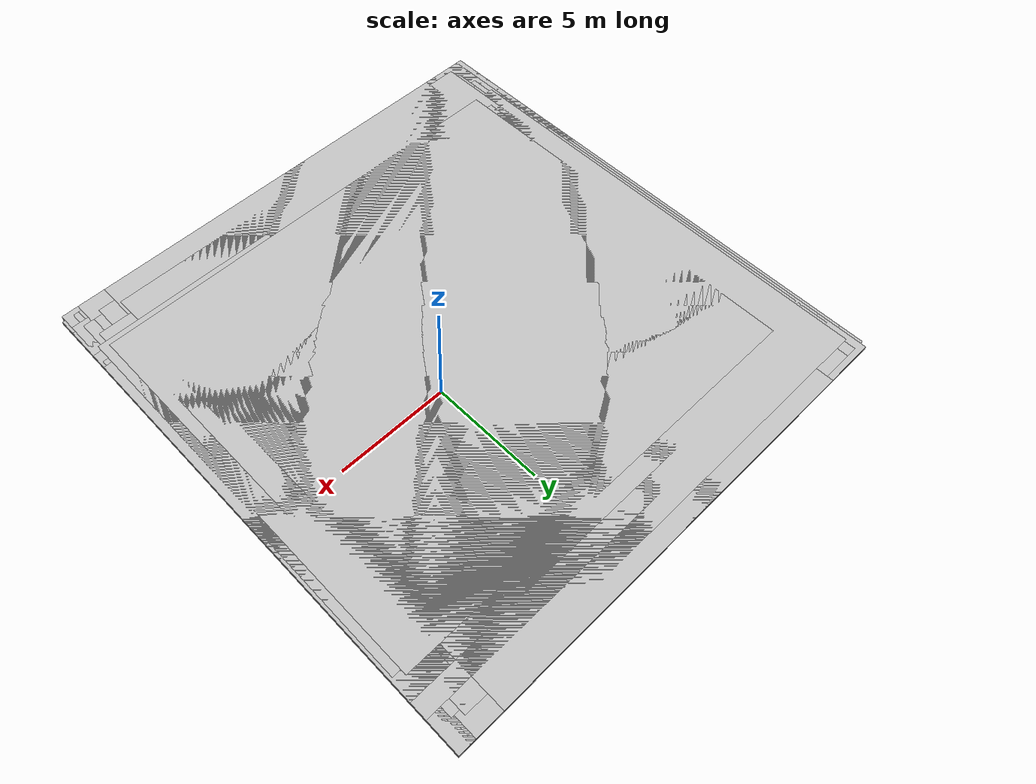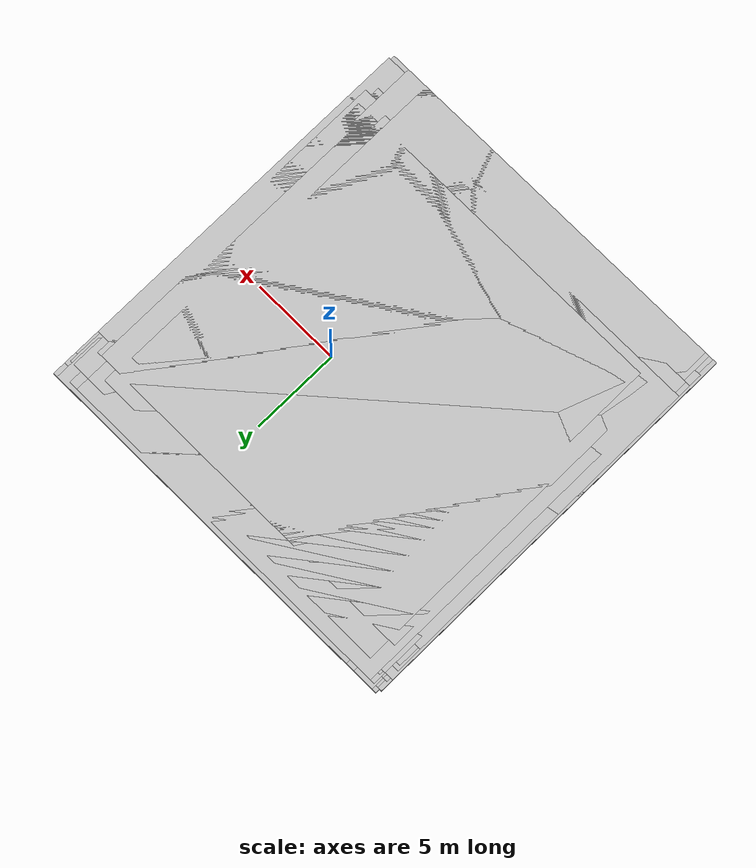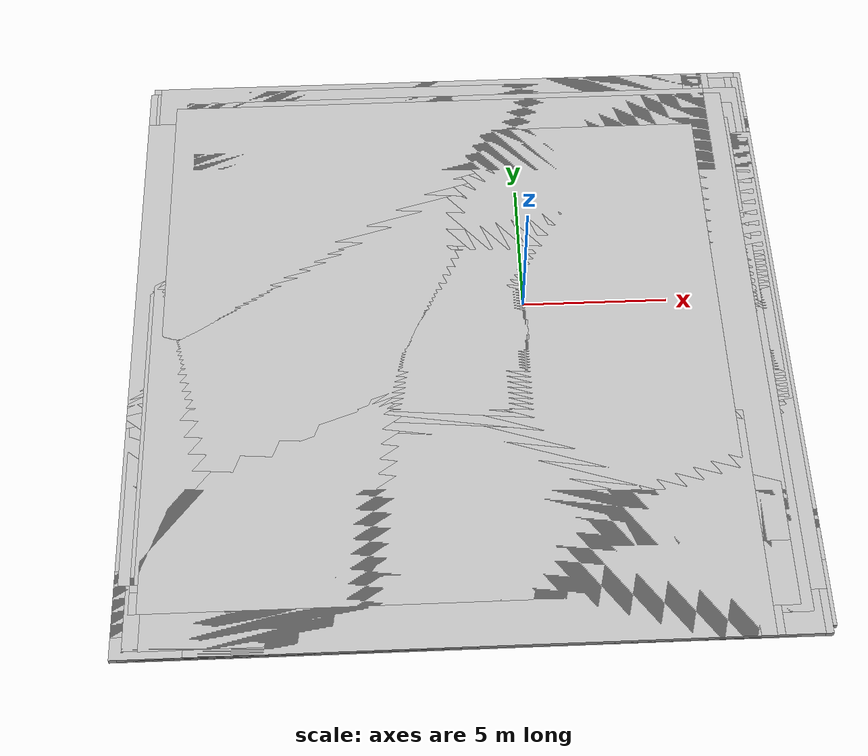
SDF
<sdf version="1.9">
 <world name="virtual_maize_field">
  <physics name="10ms" type="ignored">
   <max_step_size>0.03</max_step_size>
   <real_time_factor>1.0</real_time_factor>
  </physics>
  <plugin filename="gz-sim-physics-system" name="gz::sim::systems::Physics"/>
  <plugin filename="gz-sim-user-commands-system" name="gz::sim::systems::UserCommands"/>
  <plugin filename="gz-sim-scene-broadcaster-system" name="gz::sim::systems::SceneBroadcaster"/>
  <light type="directional" name="sun">
   <pose>0 0 10 0 0 0</pose>
   <diffuse>0.8 0.8 0.8 1</diffuse>
   <specular>0.2 0.2 0.2 1</specular>
   <attenuation>
    <range>1000</range>
    <constant>0.9</constant>
    <linear>0.01</linear>
    <quadratic>0.001</quadratic>
   </attenuation>
   <direction>-0.5 0.1 -0.9</direction>
  </light>
  <include>
   <name>rice_g0rA_p0</name>
   <pose>-3.5000 -3.0000 0.3 0 0 0</pose>
   <uri>/home/ubuntu/github/Omni-Directional-Mobile-Robot/src/robotpadi_description/models/maize_01/model.sdf</uri>
  </include>
  <include>
   <name>rice_g0rB_p0</name>
   <pose>-3.3750 -2.7500 0.3 0 0 0</pose>
   <uri>/home/ubuntu/github/Omni-Directional-Mobile-Robot/src/robotpadi_description/models/maize_01/model.sdf</uri>
  </include>
  <include>
   <name>rice_g0rA_p1</name>
   <pose>-3.2500 -3.0000 0.3 0 0 0</pose>
   <uri>/home/ubuntu/github/Omni-Directional-Mobile-Robot/src/robotpadi_description/models/maize_02/model.sdf</uri>
  </include>
  <include>
   <name>rice_g0rB_p1</name>
   <pose>-3.1250 -2.7500 0.3 0 0 0</pose>
   <uri>/home/ubuntu/github/Omni-Directional-Mobile-Robot/src/robotpadi_description/models/maize_02/model.sdf</uri>
  </include>
  <include>
   <name>rice_g0rA_p2</name>
   <pose>-3.0000 -3.0000 0.3 0 0 0</pose>
   <uri>/home/ubuntu/github/Omni-Directional-Mobile-Robot/src/robotpadi_description/models/maize_01/model.sdf</uri>
  </include>
  <include>
   <name>rice_g0rB_p2</name>
   <pose>-2.8750 -2.7500 0.3 0 0 0</pose>
   <uri>/home/ubuntu/github/Omni-Directional-Mobile-Robot/src/robotpadi_description/models/maize_01/model.sdf</uri>
  </include>
  <include>
   <name>rice_g0rA_p3</name>
   <pose>-2.7500 -3.0000 0.3 0 0 0</pose>
   <uri>/home/ubuntu/github/Omni-Directional-Mobile-Robot/src/robotpadi_description/models/maize_02/model.sdf</uri>
  </include>
  <include>
   <name>rice_g0rB_p3</name>
   <pose>-2.6250 -2.7500 0.3 0 0 0</pose>
   <uri>/home/ubuntu/github/Omni-Directional-Mobile-Robot/src/robotpadi_description/models/maize_02/model.sdf</uri>
  </include>
  <include>
   <name>rice_g0rA_p4</name>
   <pose>-2.5000 -3.0000 0.3 0 0 0</pose>
   <uri>/home/ubuntu/github/Omni-Directional-Mobile-Robot/src/robotpadi_description/models/maize_01/model.sdf</uri>
  </include>
  <include>
   <name>rice_g0rB_p4</name>
   <pose>-2.3750 -2.7500 0.3 0 0 0</pose>
   <uri>/home/ubuntu/github/Omni-Directional-Mobile-Robot/src/robotpadi_description/models/maize_01/model.sdf</uri>
  </include>
  <include>
   <name>rice_g0rA_p5</name>
   <pose>-2.2500 -3.0000 0.3 0 0 0</pose>
   <uri>/home/ubuntu/github/Omni-Directional-Mobile-Robot/src/robotpadi_description/models/maize_02/model.sdf</uri>
  </include>
  <include>
   <name>rice_g0rB_p5</name>
   <pose>-2.1250 -2.7500 0.3 0 0 0</pose>
   <uri>/home/ubuntu/github/Omni-Directional-Mobile-Robot/src/robotpadi_description/models/maize_02/model.sdf</uri>
  </include>
  <include>
   <name>rice_g0rA_p6</name>
   <pose>-2.0000 -3.0000 0.3 0 0 0</pose>
   <uri>/home/ubuntu/github/Omni-Directional-Mobile-Robot/src/robotpadi_description/models/maize_01/model.sdf</uri>
  </include>
  <include>
   <name>rice_g0rB_p6</name>
   <pose>-1.8750 -2.7500 0.3 0 0 0</pose>
   <uri>/home/ubuntu/github/Omni-Directional-Mobile-Robot/src/robotpadi_description/models/maize_01/model.sdf</uri>
  </include>
  <include>
   <name>rice_g0rA_p7</name>
   <pose>-1.7500 -3.0000 0.3 0 0 0</pose>
   <uri>/home/ubuntu/github/Omni-Directional-Mobile-Robot/src/robotpadi_description/models/maize_02/model.sdf</uri>
  </include>
  <include>
   <name>rice_g0rB_p7</name>
   <pose>-1.6250 -2.7500 0.3 0 0 0</pose>
   <uri>/home/ubuntu/github/Omni-Directional-Mobile-Robot/src/robotpadi_description/models/maize_02/model.sdf</uri>
  </include>
  <include>
   <name>rice_g0rA_p8</name>
   <pose>-1.5000 -3.0000 0.3 0 0 0</pose>
   <uri>/home/ubuntu/github/Omni-Directional-Mobile-Robot/src/robotpadi_description/models/maize_01/model.sdf</uri>
  </include>
  <include>
   <name>rice_g0rB_p8</name>
   <pose>-1.3750 -2.7500 0.3 0 0 0</pose>
   <uri>/home/ubuntu/github/Omni-Directional-Mobile-Robot/src/robotpadi_description/models/maize_01/model.sdf</uri>
  </include>
  <include>
   <name>rice_g0rA_p9</name>
   <pose>-1.2500 -3.0000 0.3 0 0 0</pose>
   <uri>/home/ubuntu/github/Omni-Directional-Mobile-Robot/src/robotpadi_description/models/maize_02/model.sdf</uri>
  </include>
  <include>
   <name>rice_g0rB_p9</name>
   <pose>-1.1250 -2.7500 0.3 0 0 0</pose>
   <uri>/home/ubuntu/github/Omni-Directional-Mobile-Robot/src/robotpadi_description/models/maize_02/model.sdf</uri>
  </include>
  <include>
   <name>rice_g1rA_p0</name>
   <pose>-3.5000 -2.2500 0.3 0 0 0</pose>
   <uri>/home/ubuntu/github/Omni-Directional-Mobile-Robot/src/robotpadi_description/models/maize_01/model.sdf</uri>
  </include>
  <include>
   <name>rice_g1rB_p0</name>
   <pose>-3.3750 -2.0000 0.3 0 0 0</pose>
   <uri>/home/ubuntu/github/Omni-Directional-Mobile-Robot/src/robotpadi_description/models/maize_01/model.sdf</uri>
  </include>
  <include>
   <name>rice_g1rA_p1</name>
   <pose>-3.2500 -2.2500 0.3 0 0 0</pose>
   <uri>/home/ubuntu/github/Omni-Directional-Mobile-Robot/src/robotpadi_description/models/maize_02/model.sdf</uri>
  </include>
  <include>
   <name>rice_g1rB_p1</name>
   <pose>-3.1250 -2.0000 0.3 0 0 0</pose>
   <uri>/home/ubuntu/github/Omni-Directional-Mobile-Robot/src/robotpadi_description/models/maize_02/model.sdf</uri>
  </include>
  <include>
   <name>rice_g1rA_p2</name>
   <pose>-3.0000 -2.2500 0.3 0 0 0</pose>
   <uri>/home/ubuntu/github/Omni-Directional-Mobile-Robot/src/robotpadi_description/models/maize_01/model.sdf</uri>
  </include>
  <include>
   <name>rice_g1rB_p2</name>
   <pose>-2.8750 -2.0000 0.3 0 0 0</pose>
   <uri>/home/ubuntu/github/Omni-Directional-Mobile-Robot/src/robotpadi_description/models/maize_01/model.sdf</uri>
  </include>
  <include>
   <name>rice_g1rA_p3</name>
   <pose>-2.7500 -2.2500 0.3 0 0 0</pose>
   <uri>/home/ubuntu/github/Omni-Directional-Mobile-Robot/src/robotpadi_description/models/maize_02/model.sdf</uri>
  </include>
  <include>
   <name>rice_g1rB_p3</name>
   <pose>-2.6250 -2.0000 0.3 0 0 0</pose>
   <uri>/home/ubuntu/github/Omni-Directional-Mobile-Robot/src/robotpadi_description/models/maize_02/model.sdf</uri>
  </include>
  <include>
   <name>rice_g1rA_p4</name>
   <pose>-2.5000 -2.2500 0.3 0 0 0</pose>
   <uri>/home/ubuntu/github/Omni-Directional-Mobile-Robot/src/robotpadi_description/models/maize_01/model.sdf</uri>
  </include>
  <include>
   <name>rice_g1rB_p4</name>
   <pose>-2.3750 -2.0000 0.3 0 0 0</pose>
   <uri>/home/ubuntu/github/Omni-Directional-Mobile-Robot/src/robotpadi_description/models/maize_01/model.sdf</uri>
  </include>
  <include>
   <name>rice_g1rA_p5</name>
   <pose>-2.2500 -2.2500 0.3 0 0 0</pose>
   <uri>/home/ubuntu/github/Omni-Directional-Mobile-Robot/src/robotpadi_description/models/maize_02/model.sdf</uri>
  </include>
  <include>
   <name>rice_g1rB_p5</name>
   <pose>-2.1250 -2.0000 0.3 0 0 0</pose>
   <uri>/home/ubuntu/github/Omni-Directional-Mobile-Robot/src/robotpadi_description/models/maize_02/model.sdf</uri>
  </include>
  <include>
   <name>rice_g1rA_p6</name>
   <pose>-2.0000 -2.2500 0.3 0 0 0</pose>
   <uri>/home/ubuntu/github/Omni-Directional-Mobile-Robot/src/robotpadi_description/models/maize_01/model.sdf</uri>
  </include>
  <include>
   <name>rice_g1rB_p6</name>
   <pose>-1.8750 -2.0000 0.3 0 0 0</pose>
   <uri>/home/ubuntu/github/Omni-Directional-Mobile-Robot/src/robotpadi_description/models/maize_01/model.sdf</uri>
  </include>
  <include>
   <name>rice_g1rA_p7</name>
   <pose>-1.7500 -2.2500 0.3 0 0 0</pose>
   <uri>/home/ubuntu/github/Omni-Directional-Mobile-Robot/src/robotpadi_description/models/maize_02/model.sdf</uri>
  </include>
  <include>
   <name>rice_g1rB_p7</name>
   <pose>-1.6250 -2.0000 0.3 0 0 0</pose>
   <uri>/home/ubuntu/github/Omni-Directional-Mobile-Robot/src/robotpadi_description/models/maize_02/model.sdf</uri>
  </include>
  <include>
   <name>rice_g1rA_p8</name>
   <pose>-1.5000 -2.2500 0.3 0 0 0</pose>
   <uri>/home/ubuntu/github/Omni-Directional-Mobile-Robot/src/robotpadi_description/models/maize_01/model.sdf</uri>
  </include>
  <include>
   <name>rice_g1rB_p8</name>
   <pose>-1.3750 -2.0000 0.3 0 0 0</pose>
   <uri>/home/ubuntu/github/Omni-Directional-Mobile-Robot/src/robotpadi_description/models/maize_01/model.sdf</uri>
  </include>
  <include>
   <name>rice_g1rA_p9</name>
   <pose>-1.2500 -2.2500 0.3 0 0 0</pose>
   <uri>/home/ubuntu/github/Omni-Directional-Mobile-Robot/src/robotpadi_description/models/maize_02/model.sdf</uri>
  </include>
  <include>
   <name>rice_g1rB_p9</name>
   <pose>-1.1250 -2.0000 0.3 0 0 0</pose>
   <uri>/home/ubuntu/github/Omni-Directional-Mobile-Robot/src/robotpadi_description/models/maize_02/model.sdf</uri>
  </include>
  <include>
   <name>rice_g2rA_p0</name>
   <pose>-3.5000 -1.5000 0.3 0 0 0</pose>
   <uri>/home/ubuntu/github/Omni-Directional-Mobile-Robot/src/robotpadi_description/models/maize_01/model.sdf</uri>
  </include>
  <include>
   <name>rice_g2rB_p0</name>
   <pose>-3.3750 -1.2500 0.3 0 0 0</pose>
   <uri>/home/ubuntu/github/Omni-Directional-Mobile-Robot/src/robotpadi_description/models/maize_01/model.sdf</uri>
  </include>
  <include>
   <name>rice_g2rA_p1</name>
   <pose>-3.2500 -1.5000 0.3 0 0 0</pose>
   <uri>/home/ubuntu/github/Omni-Directional-Mobile-Robot/src/robotpadi_description/models/maize_02/model.sdf</uri>
  </include>
  <include>
   <name>rice_g2rB_p1</name>
   <pose>-3.1250 -1.2500 0.3 0 0 0</pose>
   <uri>/home/ubuntu/github/Omni-Directional-Mobile-Robot/src/robotpadi_description/models/maize_02/model.sdf</uri>
  </include>
  <include>
   <name>rice_g2rA_p2</name>
   <pose>-3.0000 -1.5000 0.3 0 0 0</pose>
   <uri>/home/ubuntu/github/Omni-Directional-Mobile-Robot/src/robotpadi_description/models/maize_01/model.sdf</uri>
  </include>
  <include>
   <name>rice_g2rB_p2</name>
   <pose>-2.8750 -1.2500 0.3 0 0 0</pose>
   <uri>/home/ubuntu/github/Omni-Directional-Mobile-Robot/src/robotpadi_description/models/maize_01/model.sdf</uri>
  </include>
  <include>
   <name>rice_g2rA_p3</name>
   <pose>-2.7500 -1.5000 0.3 0 0 0</pose>
   <uri>/home/ubuntu/github/Omni-Directional-Mobile-Robot/src/robotpadi_description/models/maize_02/model.sdf</uri>
  </include>
  <include>
   <name>rice_g2rB_p3</name>
   <pose>-2.6250 -1.2500 0.3 0 0 0</pose>
   <uri>/home/ubuntu/github/Omni-Directional-Mobile-Robot/src/robotpadi_description/models/maize_02/model.sdf</uri>
  </include>
  <include>
   <name>rice_g2rA_p4</name>
   <pose>-2.5000 -1.5000 0.3 0 0 0</pose>
   <uri>/home/ubuntu/github/Omni-Directional-Mobile-Robot/src/robotpadi_description/models/maize_01/model.sdf</uri>
  </include>
  <include>
   <name>rice_g2rB_p4</name>
   <pose>-2.3750 -1.2500 0.3 0 0 0</pose>
   <uri>/home/ubuntu/github/Omni-Directional-Mobile-Robot/src/robotpadi_description/models/maize_01/model.sdf</uri>
  </include>
  <include>
   <name>rice_g2rA_p5</name>
   <pose>-2.2500 -1.5000 0.3 0 0 0</pose>
   <uri>/home/ubuntu/github/Omni-Directional-Mobile-Robot/src/robotpadi_description/models/maize_02/model.sdf</uri>
  </include>
  <include>
   <name>rice_g2rB_p5</name>
   <pose>-2.1250 -1.2500 0.3 0 0 0</pose>
   <uri>/home/ubuntu/github/Omni-Directional-Mobile-Robot/src/robotpadi_description/models/maize_02/model.sdf</uri>
  </include>
  <include>
   <name>rice_g2rA_p6</name>
   <pose>-2.0000 -1.5000 0.3 0 0 0</pose>
   <uri>/home/ubuntu/github/Omni-Directional-Mobile-Robot/src/robotpadi_description/models/maize_01/model.sdf</uri>
  </include>
  <include>
   <name>rice_g2rB_p6</name>
   <pose>-1.8750 -1.2500 0.3 0 0 0</pose>
   <uri>/home/ubuntu/github/Omni-Directional-Mobile-Robot/src/robotpadi_description/models/maize_01/model.sdf</uri>
  </include>
  <include>
   <name>rice_g2rA_p7</name>
   <pose>-1.7500 -1.5000 0.3 0 0 0</pose>
   <uri>/home/ubuntu/github/Omni-Directional-Mobile-Robot/src/robotpadi_description/models/maize_02/model.sdf</uri>
  </include>
  <include>
   <name>rice_g2rB_p7</name>
   <pose>-1.6250 -1.2500 0.3 0 0 0</pose>
   <uri>/home/ubuntu/github/Omni-Directional-Mobile-Robot/src/robotpadi_description/models/maize_02/model.sdf</uri>
  </include>
  <include>
   <name>rice_g2rA_p8</name>
   <pose>-1.5000 -1.5000 0.3 0 0 0</pose>
   <uri>/home/ubuntu/github/Omni-Directional-Mobile-Robot/src/robotpadi_description/models/maize_01/model.sdf</uri>
  </include>
  <include>
   <name>rice_g2rB_p8</name>
   <pose>-1.3750 -1.2500 0.3 0 0 0</pose>
   <uri>/home/ubuntu/github/Omni-Directional-Mobile-Robot/src/robotpadi_description/models/maize_01/model.sdf</uri>
  </include>
  <include>
   <name>rice_g2rA_p9</name>
   <pose>-1.2500 -1.5000 0.3 0 0 0</pose>
   <uri>/home/ubuntu/github/Omni-Directional-Mobile-Robot/src/robotpadi_description/models/maize_02/model.sdf</uri>
  </include>
  <include>
   <name>rice_g2rB_p9</name>
   <pose>-1.1250 -1.2500 0.3 0 0 0</pose>
   <uri>/home/ubuntu/github/Omni-Directional-Mobile-Robot/src/robotpadi_description/models/maize_02/model.sdf</uri>
  </include>
  <include>
   <name>rice_g3rA_p0</name>
   <pose>-3.5000 -0.7500 0.3 0 0 0</pose>
   <uri>/home/ubuntu/github/Omni-Directional-Mobile-Robot/src/robotpadi_description/models/maize_01/model.sdf</uri>
  </include>
  <include>
   <name>rice_g3rB_p0</name>
   <pose>-3.3750 -0.5000 0.3 0 0 0</pose>
   <uri>/home/ubuntu/github/Omni-Directional-Mobile-Robot/src/robotpadi_description/models/maize_01/model.sdf</uri>
  </include>
  <include>
   <name>rice_g3rA_p1</name>
   <pose>-3.2500 -0.7500 0.3 0 0 0</pose>
   <uri>/home/ubuntu/github/Omni-Directional-Mobile-Robot/src/robotpadi_description/models/maize_02/model.sdf</uri>
  </include>
  <include>
   <name>rice_g3rB_p1</name>
   <pose>-3.1250 -0.5000 0.3 0 0 0</pose>
   <uri>/home/ubuntu/github/Omni-Directional-Mobile-Robot/src/robotpadi_description/models/maize_02/model.sdf</uri>
  </include>
  <include>
   <name>rice_g3rA_p2</name>
   <pose>-3.0000 -0.7500 0.3 0 0 0</pose>
   <uri>/home/ubuntu/github/Omni-Directional-Mobile-Robot/src/robotpadi_description/models/maize_01/model.sdf</uri>
  </include>
  <include>
   <name>rice_g3rB_p2</name>
   <pose>-2.8750 -0.5000 0.3 0 0 0</pose>
   <uri>/home/ubuntu/github/Omni-Directional-Mobile-Robot/src/robotpadi_description/models/maize_01/model.sdf</uri>
  </include>
  <include>
   <name>rice_g3rA_p3</name>
   <pose>-2.7500 -0.7500 0.3 0 0 0</pose>
   <uri>/home/ubuntu/github/Omni-Directional-Mobile-Robot/src/robotpadi_description/models/maize_02/model.sdf</uri>
  </include>
  <include>
   <name>rice_g3rB_p3</name>
   <pose>-2.6250 -0.5000 0.3 0 0 0</pose>
   <uri>/home/ubuntu/github/Omni-Directional-Mobile-Robot/src/robotpadi_description/models/maize_02/model.sdf</uri>
  </include>
  <include>
   <name>rice_g3rA_p4</name>
   <pose>-2.5000 -0.7500 0.3 0 0 0</pose>
   <uri>/home/ubuntu/github/Omni-Directional-Mobile-Robot/src/robotpadi_description/models/maize_01/model.sdf</uri>
  </include>
  <include>
   <name>rice_g3rB_p4</name>
   <pose>-2.3750 -0.5000 0.3 0 0 0</pose>
   <uri>/home/ubuntu/github/Omni-Directional-Mobile-Robot/src/robotpadi_description/models/maize_01/model.sdf</uri>
  </include>
  <include>
   <name>rice_g3rA_p5</name>
   <pose>-2.2500 -0.7500 0.3 0 0 0</pose>
   <uri>/home/ubuntu/github/Omni-Directional-Mobile-Robot/src/robotpadi_description/models/maize_02/model.sdf</uri>
  </include>
  <include>
   <name>rice_g3rB_p5</name>
   <pose>-2.1250 -0.5000 0.3 0 0 0</pose>
   <uri>/home/ubuntu/github/Omni-Directional-Mobile-Robot/src/robotpadi_description/models/maize_02/model.sdf</uri>
  </include>
  <include>
   <name>rice_g3rA_p6</name>
   <pose>-2.0000 -0.7500 0.3 0 0 0</pose>
   <uri>/home/ubuntu/github/Omni-Directional-Mobile-Robot/src/robotpadi_description/models/maize_01/model.sdf</uri>
  </include>
  <include>
   <name>rice_g3rB_p6</name>
   <pose>-1.8750 -0.5000 0.3 0 0 0</pose>
   <uri>/home/ubuntu/github/Omni-Directional-Mobile-Robot/src/robotpadi_description/models/maize_01/model.sdf</uri>
  </include>
  <include>
   <name>rice_g3rA_p7</name>
   <pose>-1.7500 -0.7500 0.3 0 0 0</pose>
   <uri>/home/ubuntu/github/Omni-Directional-Mobile-Robot/src/robotpadi_description/models/maize_02/model.sdf</uri>
  </include>
  <include>
   <name>rice_g3rB_p7</name>
   <pose>-1.6250 -0.5000 0.3 0 0 0</pose>
   <uri>/home/ubuntu/github/Omni-Directional-Mobile-Robot/src/robotpadi_description/models/maize_02/model.sdf</uri>
  </include>
  <include>
   <name>rice_g3rA_p8</name>
   <pose>-1.5000 -0.7500 0.3 0 0 0</pose>
   <uri>/home/ubuntu/github/Omni-Directional-Mobile-Robot/src/robotpadi_description/models/maize_01/model.sdf</uri>
  </include>
  <include>
   <name>rice_g3rB_p8</name>
   <pose>-1.3750 -0.5000 0.3 0 0 0</pose>
   <uri>/home/ubuntu/github/Omni-Directional-Mobile-Robot/src/robotpadi_description/models/maize_01/model.sdf</uri>
  </include>
  <include>
   <name>rice_g3rA_p9</name>
   <pose>-1.2500 -0.7500 0.3 0 0 0</pose>
   <uri>/home/ubuntu/github/Omni-Directional-Mobile-Robot/src/robotpadi_description/models/maize_02/model.sdf</uri>
  </include>
  <include>
   <name>rice_g3rB_p9</name>
   <pose>-1.1250 -0.5000 0.3 0 0 0</pose>
   <uri>/home/ubuntu/github/Omni-Directional-Mobile-Robot/src/robotpadi_description/models/maize_02/model.sdf</uri>
  </include>
  <include>
   <name>rice_g4rA_p0</name>
   <pose>-3.5000 0.0000 0.3 0 0 0</pose>
   <uri>/home/ubuntu/github/Omni-Directional-Mobile-Robot/src/robotpadi_description/models/maize_01/model.sdf</uri>
  </include>
  <include>
   <name>rice_g4rB_p0</name>
   <pose>-3.3750 0.2500 0.3 0 0 0</pose>
   <uri>/home/ubuntu/github/Omni-Directional-Mobile-Robot/src/robotpadi_description/models/maize_01/model.sdf</uri>
  </include>
  <include>
   <name>rice_g4rA_p1</name>
   <pose>-3.2500 0.0000 0.3 0 0 0</pose>
   <uri>/home/ubuntu/github/Omni-Directional-Mobile-Robot/src/robotpadi_description/models/maize_02/model.sdf</uri>
  </include>
  <include>
   <name>rice_g4rB_p1</name>
   <pose>-3.1250 0.2500 0.3 0 0 0</pose>
   <uri>/home/ubuntu/github/Omni-Directional-Mobile-Robot/src/robotpadi_description/models/maize_02/model.sdf</uri>
  </include>
  <include>
   <name>rice_g4rA_p2</name>
   <pose>-3.0000 0.0000 0.3 0 0 0</pose>
   <uri>/home/ubuntu/github/Omni-Directional-Mobile-Robot/src/robotpadi_description/models/maize_01/model.sdf</uri>
  </include>
  <include>
   <name>rice_g4rB_p2</name>
   <pose>-2.8750 0.2500 0.3 0 0 0</pose>
   <uri>/home/ubuntu/github/Omni-Directional-Mobile-Robot/src/robotpadi_description/models/maize_01/model.sdf</uri>
  </include>
  <include>
   <name>rice_g4rA_p3</name>
   <pose>-2.7500 0.0000 0.3 0 0 0</pose>
   <uri>/home/ubuntu/github/Omni-Directional-Mobile-Robot/src/robotpadi_description/models/maize_02/model.sdf</uri>
  </include>
  <include>
   <name>rice_g4rB_p3</name>
   <pose>-2.6250 0.2500 0.3 0 0 0</pose>
   <uri>/home/ubuntu/github/Omni-Directional-Mobile-Robot/src/robotpadi_description/models/maize_02/model.sdf</uri>
  </include>
  <include>
   <name>rice_g4rA_p4</name>
   <pose>-2.5000 0.0000 0.3 0 0 0</pose>
   <uri>/home/ubuntu/github/Omni-Directional-Mobile-Robot/src/robotpadi_description/models/maize_01/model.sdf</uri>
  </include>
  <include>
   <name>rice_g4rB_p4</name>
   <pose>-2.3750 0.2500 0.3 0 0 0</pose>
   <uri>/home/ubuntu/github/Omni-Directional-Mobile-Robot/src/robotpadi_description/models/maize_01/model.sdf</uri>
  </include>
  <include>
   <name>rice_g4rA_p5</name>
   <pose>-2.2500 0.0000 0.3 0 0 0</pose>
   <uri>/home/ubuntu/github/Omni-Directional-Mobile-Robot/src/robotpadi_description/models/maize_02/model.sdf</uri>
  </include>
  <include>
   <name>rice_g4rB_p5</name>
   <pose>-2.1250 0.2500 0.3 0 0 0</pose>
   <uri>/home/ubuntu/github/Omni-Directional-Mobile-Robot/src/robotpadi_description/models/maize_02/model.sdf</uri>
  </include>
  <include>
   <name>rice_g4rA_p6</name>
   <pose>-2.0000 0.0000 0.3 0 0 0</pose>
   <uri>/home/ubuntu/github/Omni-Directional-Mobile-Robot/src/robotpadi_description/models/maize_01/model.sdf</uri>
  </include>
  <include>
   <name>rice_g4rB_p6</name>
   <pose>-1.8750 0.2500 0.3 0 0 0</pose>
   <uri>/home/ubuntu/github/Omni-Directional-Mobile-Robot/src/robotpadi_description/models/maize_01/model.sdf</uri>
  </include>
  <include>
   <name>rice_g4rA_p7</name>
   <pose>-1.7500 0.0000 0.3 0 0 0</pose>
   <uri>/home/ubuntu/github/Omni-Directional-Mobile-Robot/src/robotpadi_description/models/maize_02/model.sdf</uri>
  </include>
  <include>
   <name>rice_g4rB_p7</name>
   <pose>-1.6250 0.2500 0.3 0 0 0</pose>
   <uri>/home/ubuntu/github/Omni-Directional-Mobile-Robot/src/robotpadi_description/models/maize_02/model.sdf</uri>
  </include>
  <include>
   <name>rice_g4rA_p8</name>
   <pose>-1.5000 0.0000 0.3 0 0 0</pose>
   <uri>/home/ubuntu/github/Omni-Directional-Mobile-Robot/src/robotpadi_description/models/maize_01/model.sdf</uri>
  </include>
  <include>
   <name>rice_g4rB_p8</name>
   <pose>-1.3750 0.2500 0.3 0 0 0</pose>
   <uri>/home/ubuntu/github/Omni-Directional-Mobile-Robot/src/robotpadi_description/models/maize_01/model.sdf</uri>
  </include>
  <include>
   <name>rice_g4rA_p9</name>
   <pose>-1.2500 0.0000 0.3 0 0 0</pose>
   <uri>/home/ubuntu/github/Omni-Directional-Mobile-Robot/src/robotpadi_description/models/maize_02/model.sdf</uri>
  </include>
  <include>
   <name>rice_g4rB_p9</name>
   <pose>-1.1250 0.2500 0.3 0 0 0</pose>
   <uri>/home/ubuntu/github/Omni-Directional-Mobile-Robot/src/robotpadi_description/models/maize_02/model.sdf</uri>
  </include>
 </world>
</sdf>

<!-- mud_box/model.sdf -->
<sdf version="1.5">
  <model name="mud_box">
    <static>true</static>
    <link name="link">
      <collision name="collision">
        <geometry>
          <box>
            <size>20 20 0.2</size>
          </box>
        </geometry>
      </collision>
      <visual name="visual">
        <pose>0 0 0 0 0 0</pose>
        <cast_shadows>false</cast_shadows>
        <geometry>
          <box>
            <size>20 20 0.2</size>
          </box>
        </geometry>
        <material>
          <script>
            <uri>model://Mud_Box/materials/scripts</uri>
            <uri>model://Mud_Box/materials/textures</uri>
            <name>vrc/mud</name>
          </script>
        </material>
      </visual>
    </link>
  </model>
</sdf>
